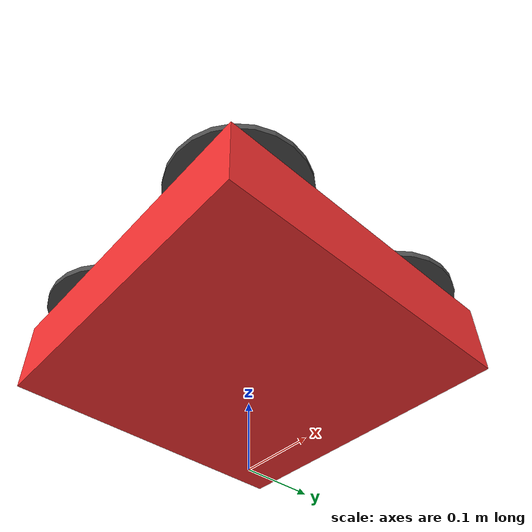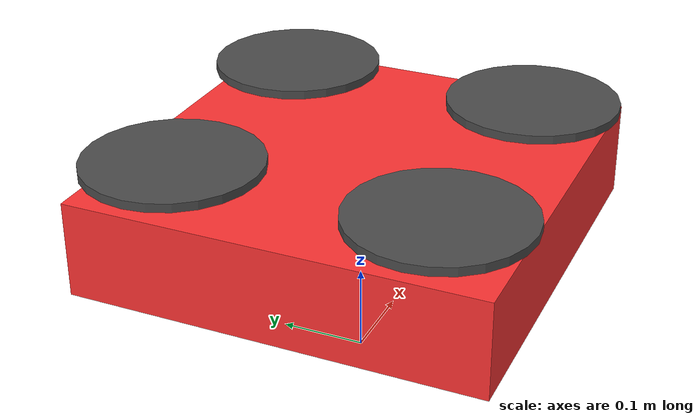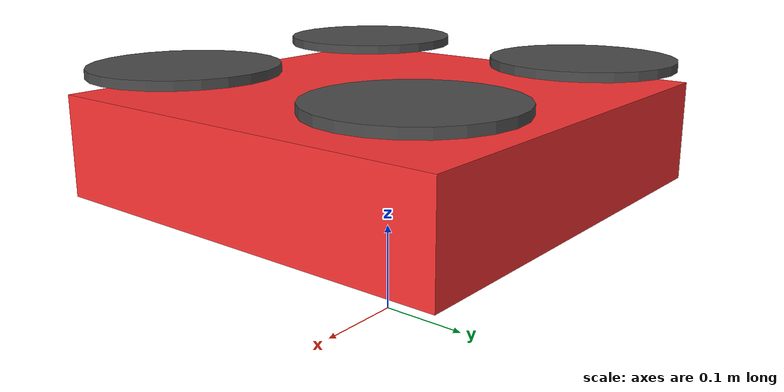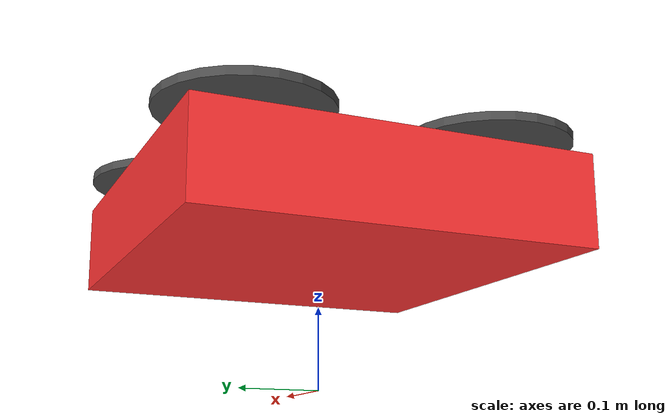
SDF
<?xml version="1.0" ?>
<sdf version="1.9">
  <model name="Cube">

    <pose>0 0 0.2 0 0 0</pose>

    <link name="base_link">
      <inertial>
        <pose>0 0 0 0 0 0</pose>
        <mass>1.5</mass>
        <inertia>
          <ixx>0.029125</ixx>
          <ixy>0.0</ixy>
          <ixz>0.0</ixz>
          <iyy>0.029125</iyy>
          <iyz>0.0</iyz>
          <izz>0.055225</izz>
        </inertia>
      </inertial>

      <visual name="visual">
        <geometry>
          <box>
            <size>0.47 0.47 0.11</size>
          </box>
        </geometry>
        <material>
          <ambient>1 0 0 1</ambient>
          <diffuse>1 0.2 0.2 1</diffuse>
          <specular>0.8 0.8 0.8 1</specular>
        </material>
      </visual>

      <collision name="collision">
        <geometry>
          <box>
            <size>0.47 0.47 0.11</size>
          </box>
        </geometry>
      </collision>

      <!-- Propeller visuals -->
      <visual name="prop_front_left">
        <pose>0.15 0.15 0.08 0 0 0</pose>
        <geometry>
          <cylinder>
            <radius>0.1</radius>
            <length>0.01</length>
          </cylinder>
        </geometry>
        <material>
          <ambient>0.2 0.2 0.2 1</ambient>
          <diffuse>0.3 0.3 0.3 1</diffuse>
        </material>
      </visual>

      <visual name="prop_front_right">
        <pose>0.15 -0.15 0.08 0 0 0</pose>
        <geometry>
          <cylinder>
            <radius>0.1</radius>
            <length>0.01</length>
          </cylinder>
        </geometry>
        <material>
          <ambient>0.2 0.2 0.2 1</ambient>
          <diffuse>0.3 0.3 0.3 1</diffuse>
        </material>
      </visual>

      <visual name="prop_back_left">
        <pose>-0.15 0.15 0.08 0 0 0</pose>
        <geometry>
          <cylinder>
            <radius>0.1</radius>
            <length>0.01</length>
          </cylinder>
        </geometry>
        <material>
          <ambient>0.2 0.2 0.2 1</ambient>
          <diffuse>0.3 0.3 0.3 1</diffuse>
        </material>
      </visual>

      <visual name="prop_back_right">
        <pose>-0.15 -0.15 0.08 0 0 0</pose>
        <geometry>
          <cylinder>
            <radius>0.1</radius>
            <length>0.01</length>
          </cylinder>
        </geometry>
        <material>
          <ambient>0.2 0.2 0.2 1</ambient>
          <diffuse>0.3 0.3 0.3 1</diffuse>
        </material>
      </visual>
    </link>

    <!-- IMU Link - Separate from base_link (following iris pattern) -->
    <link name="imu_link">
      <inertial>
        <pose>0 0 0 0 0 0</pose>
        <mass>0.15</mass>
        <inertia>
          <ixx>0.00001</ixx>
          <ixy>0</ixy>
          <ixz>0</ixz>
          <iyy>0.00002</iyy>
          <iyz>0</iyz>
          <izz>0.00002</izz>
        </inertia>
      </inertial>
      <sensor name="imu_sensor" type="imu">
        <pose degrees="true">0 0 0 180 0 0</pose>
        <always_on>true</always_on>
        <update_rate>250.0</update_rate>
        <visualize>true</visualize>
        <topic>imu</topic>
        <enable_metrics>false</enable_metrics>
      </sensor>
    </link>

    <!-- Joint to attach IMU to base_link -->
    <joint name="imu_joint" type="revolute">
      <child>imu_link</child>
      <parent>base_link</parent>
      <axis>
        <xyz>0 0 1</xyz>
        <limit>
          <lower>0</lower>
          <upper>0</upper>
          <effort>0</effort>
          <velocity>0</velocity>
        </limit>
        <dynamics>
          <damping>1.0</damping>
        </dynamics>
      </axis>
    </joint>

    <!-- Rotor links and joints -->
    <link name="rotor_0">
      <pose>0.15 0.15 0.08 0 0 0</pose>
      <inertial>
        <pose>0 0 0 0 0 0</pose>
        <mass>0.005</mass>
        <inertia>
          <ixx>9.75e-07</ixx>
          <ixy>0.0</ixy>
          <ixz>0.0</ixz>
          <iyy>0.000166704</iyy>
          <iyz>0.0</iyz>
          <izz>0.000167604</izz>
        </inertia>
      </inertial>
    </link>

    <joint name="rotor_0_joint" type="revolute">
      <parent>base_link</parent>
      <child>rotor_0</child>
      <axis>
        <xyz>0 0 1</xyz>
        <limit>
          <lower>-1e+16</lower>
          <upper>1e+16</upper>
        </limit>
        <dynamics>
          <damping>0.001</damping>
        </dynamics>
      </axis>
    </joint>

    <link name="rotor_1">
      <pose>0.15 -0.15 0.08 0 0 0</pose>
      <inertial>
        <pose>0 0 0 0 0 0</pose>
        <mass>0.005</mass>
        <inertia>
          <ixx>9.75e-07</ixx>
          <ixy>0.0</ixy>
          <ixz>0.0</ixz>
          <iyy>0.000166704</iyy>
          <iyz>0.0</iyz>
          <izz>0.000167604</izz>
        </inertia>
      </inertial>
    </link>

    <joint name="rotor_1_joint" type="revolute">
      <parent>base_link</parent>
      <child>rotor_1</child>
      <axis>
        <xyz>0 0 1</xyz>
        <limit>
          <lower>-1e+16</lower>
          <upper>1e+16</upper>
        </limit>
        <dynamics>
          <damping>0.001</damping>
        </dynamics>
      </axis>
    </joint>

    <link name="rotor_2">
      <pose>-0.15 0.15 0.08 0 0 0</pose>
      <inertial>
        <pose>0 0 0 0 0 0</pose>
        <mass>0.005</mass>
        <inertia>
          <ixx>9.75e-07</ixx>
          <ixy>0.0</ixy>
          <ixz>0.0</ixz>
          <iyy>0.000166704</iyy>
          <iyz>0.0</iyz>
          <izz>0.000167604</izz>
        </inertia>
      </inertial>
    </link>

    <joint name="rotor_2_joint" type="revolute">
      <parent>base_link</parent>
      <child>rotor_2</child>
      <axis>
        <xyz>0 0 1</xyz>
        <limit>
          <lower>-1e+16</lower>
          <upper>1e+16</upper>
        </limit>
        <dynamics>
          <damping>0.001</damping>
        </dynamics>
      </axis>
    </joint>

    <link name="rotor_3">
      <pose>-0.15 -0.15 0.08 0 0 0</pose>
      <inertial>
        <pose>0 0 0 0 0 0</pose>
        <mass>0.005</mass>
        <inertia>
          <ixx>9.75e-07</ixx>
          <ixy>0.0</ixy>
          <ixz>0.0</ixz>
          <iyy>0.000166704</iyy>
          <iyz>0.0</iyz>
          <izz>0.000167604</izz>
        </inertia>
      </inertial>
    </link>

    <joint name="rotor_3_joint" type="revolute">
      <parent>base_link</parent>
      <child>rotor_3</child>
      <axis>
        <xyz>0 0 1</xyz>
        <limit>
          <lower>-1e+16</lower>
          <upper>1e+16</upper>
        </limit>
        <dynamics>
          <damping>0.001</damping>
        </dynamics>
      </axis>
    </joint>

    <!-- Lift-Drag plugins for rotor aerodynamics -->
    <!-- Rotor 0 - Front Left -->
    <plugin filename="gz-sim-lift-drag-system"
        name="gz::sim::systems::LiftDrag">
      <a0>0.3</a0>
      <alpha_stall>1.4</alpha_stall>
      <cla>4.2500</cla>
      <cda>0.10</cda>
      <cma>0.0</cma>
      <cla_stall>-0.025</cla_stall>
      <cda_stall>0.0</cda_stall>
      <cma_stall>0.0</cma_stall>
      <area>0.002</area>
      <air_density>1.2041</air_density>
      <cp>0.084 0 0</cp>
      <forward>0 1 0</forward>
      <upward>0 0 1</upward>
      <link_name>rotor_0</link_name>
    </plugin>
    <plugin filename="gz-sim-lift-drag-system"
        name="gz::sim::systems::LiftDrag">
      <a0>0.3</a0>
      <alpha_stall>1.4</alpha_stall>
      <cla>4.2500</cla>
      <cda>0.10</cda>
      <cma>0.0</cma>
      <cla_stall>-0.025</cla_stall>
      <cda_stall>0.0</cda_stall>
      <cma_stall>0.0</cma_stall>
      <area>0.002</area>
      <air_density>1.2041</air_density>
      <cp>-0.084 0 0</cp>
      <forward>0 -1 0</forward>
      <upward>0 0 1</upward>
      <link_name>rotor_0</link_name>
    </plugin>

    <!-- Rotor 1 - Front Right -->
    <plugin filename="gz-sim-lift-drag-system"
        name="gz::sim::systems::LiftDrag">
      <a0>0.3</a0>
      <alpha_stall>1.4</alpha_stall>
      <cla>4.2500</cla>
      <cda>0.10</cda>
      <cma>0.0</cma>
      <cla_stall>-0.025</cla_stall>
      <cda_stall>0.0</cda_stall>
      <cma_stall>0.0</cma_stall>
      <area>0.002</area>
      <air_density>1.2041</air_density>
      <cp>0.084 0 0</cp>
      <forward>0 1 0</forward>
      <upward>0 0 1</upward>
      <link_name>rotor_1</link_name>
    </plugin>
    <plugin filename="gz-sim-lift-drag-system"
        name="gz::sim::systems::LiftDrag">
      <a0>0.3</a0>
      <alpha_stall>1.4</alpha_stall>
      <cla>4.2500</cla>
      <cda>0.10</cda>
      <cma>0.0</cma>
      <cla_stall>-0.025</cla_stall>
      <cda_stall>0.0</cda_stall>
      <cma_stall>0.0</cma_stall>
      <area>0.002</area>
      <air_density>1.2041</air_density>
      <cp>-0.084 0 0</cp>
      <forward>0 -1 0</forward>
      <upward>0 0 1</upward>
      <link_name>rotor_1</link_name>
    </plugin>

    <!-- Rotor 2 - Back Left -->
    <plugin filename="gz-sim-lift-drag-system"
        name="gz::sim::systems::LiftDrag">
      <a0>0.3</a0>
      <alpha_stall>1.4</alpha_stall>
      <cla>4.2500</cla>
      <cda>0.10</cda>
      <cma>0.0</cma>
      <cla_stall>-0.025</cla_stall>
      <cda_stall>0.0</cda_stall>
      <cma_stall>0.0</cma_stall>
      <area>0.002</area>
      <air_density>1.2041</air_density>
      <cp>0.084 0 0</cp>
      <forward>0 -1 0</forward>
      <upward>0 0 1</upward>
      <link_name>rotor_2</link_name>
    </plugin>
    <plugin filename="gz-sim-lift-drag-system"
        name="gz::sim::systems::LiftDrag">
      <a0>0.3</a0>
      <alpha_stall>1.4</alpha_stall>
      <cla>4.2500</cla>
      <cda>0.10</cda>
      <cma>0.0</cma>
      <cla_stall>-0.025</cla_stall>
      <cda_stall>0.0</cda_stall>
      <cma_stall>0.0</cma_stall>
      <area>0.002</area>
      <air_density>1.2041</air_density>
      <cp>-0.084 0 0</cp>
      <forward>0 1 0</forward>
      <upward>0 0 1</upward>
      <link_name>rotor_2</link_name>
    </plugin>

    <!-- Rotor 3 - Back Right -->
    <plugin filename="gz-sim-lift-drag-system"
        name="gz::sim::systems::LiftDrag">
      <a0>0.3</a0>
      <alpha_stall>1.4</alpha_stall>
      <cla>4.2500</cla>
      <cda>0.10</cda>
      <cma>0.0</cma>
      <cla_stall>-0.025</cla_stall>
      <cda_stall>0.0</cda_stall>
      <cma_stall>0.0</cma_stall>
      <area>0.002</area>
      <air_density>1.2041</air_density>
      <cp>0.084 0 0</cp>
      <forward>0 -1 0</forward>
      <upward>0 0 1</upward>
      <link_name>rotor_3</link_name>
    </plugin>
    <plugin filename="gz-sim-lift-drag-system"
        name="gz::sim::systems::LiftDrag">
      <a0>0.3</a0>
      <alpha_stall>1.4</alpha_stall>
      <cla>4.2500</cla>
      <cda>0.10</cda>
      <cma>0.0</cma>
      <cla_stall>-0.025</cla_stall>
      <cda_stall>0.0</cda_stall>
      <cma_stall>0.0</cma_stall>
      <area>0.002</area>
      <air_density>1.2041</air_density>
      <cp>-0.084 0 0</cp>
      <forward>0 1 0</forward>
      <upward>0 0 1</upward>
      <link_name>rotor_3</link_name>
    </plugin>

    <!-- Apply Joint Force System - Required for motor control -->
    <plugin filename="gz-sim-apply-joint-force-system"
      name="gz::sim::systems::ApplyJointForce">
      <joint_name>rotor_0_joint</joint_name>
    </plugin>
    <plugin filename="gz-sim-apply-joint-force-system"
      name="gz::sim::systems::ApplyJointForce">
      <joint_name>rotor_1_joint</joint_name>
    </plugin>
    <plugin filename="gz-sim-apply-joint-force-system"
      name="gz::sim::systems::ApplyJointForce">
      <joint_name>rotor_2_joint</joint_name>
    </plugin>
    <plugin filename="gz-sim-apply-joint-force-system"
      name="gz::sim::systems::ApplyJointForce">
      <joint_name>rotor_3_joint</joint_name>
    </plugin>

    <!-- Joint State Publisher -->
    <plugin filename="gz-sim-joint-state-publisher-system"
      name="gz::sim::systems::JointStatePublisher">
    </plugin>

    <!-- IMU System Plugin -->
    <plugin filename="gz-sim-imu-system"
      name="gz::sim::systems::Imu">
    </plugin>

    <!-- ArduPilot Plugin - MUST BE LAST -->
    <plugin filename="ArduPilotPlugin" name="ArduPilotPlugin">
      <!-- Port settings -->
      <fdm_addr>127.0.0.1</fdm_addr>
      <fdm_port_in>9002</fdm_port_in>
      <fdm_port_out>9003</fdm_port_out>
      <connectionTimeoutMaxCount>5</connectionTimeoutMaxCount>
      <lock_step>1</lock_step>

      <!-- Frame conventions -->
      <modelXYZToAirplaneXForwardZDown degrees="true">0 0 0 180 0 0</modelXYZToAirplaneXForwardZDown>
      <gazeboXYZToNED degrees="true">0 0 0 180 0 90</gazeboXYZToNED>

      <!-- IMU Sensor - CORRECTED: Now references imu_link -->
      <imuName>Cube::imu_link::imu_sensor</imuName>

      <!-- Motor 0: Front Left (CCW) -->
      <control channel="0">
        <jointName>rotor_0_joint</jointName>
        <useForce>1</useForce>
        <multiplier>838</multiplier>
        <offset>0</offset>
        <servo_min>1100</servo_min>
        <servo_max>1900</servo_max>
        <type>VELOCITY</type>
        <p_gain>0.20</p_gain>
        <i_gain>0</i_gain>
        <d_gain>0</d_gain>
        <i_max>0</i_max>
        <i_min>0</i_min>
        <cmd_max>2.5</cmd_max>
        <cmd_min>-2.5</cmd_min>
        <controlVelocitySlowdownSim>1</controlVelocitySlowdownSim>
      </control>

      <!-- Motor 1: Front Right (CW) -->
      <control channel="1">
        <jointName>rotor_1_joint</jointName>
        <useForce>1</useForce>
        <multiplier>-838</multiplier>
        <offset>0</offset>
        <servo_min>1100</servo_min>
        <servo_max>1900</servo_max>
        <type>VELOCITY</type>
        <p_gain>0.20</p_gain>
        <i_gain>0</i_gain>
        <d_gain>0</d_gain>
        <i_max>0</i_max>
        <i_min>0</i_min>
        <cmd_max>2.5</cmd_max>
        <cmd_min>-2.5</cmd_min>
        <controlVelocitySlowdownSim>1</controlVelocitySlowdownSim>
      </control>

      <!-- Motor 2: Back Left (CW) -->
      <control channel="2">
        <jointName>rotor_2_joint</jointName>
        <useForce>1</useForce>
        <multiplier>-838</multiplier>
        <offset>0</offset>
        <servo_min>1100</servo_min>
        <servo_max>1900</servo_max>
        <type>VELOCITY</type>
        <p_gain>0.20</p_gain>
        <i_gain>0</i_gain>
        <d_gain>0</d_gain>
        <i_max>0</i_max>
        <i_min>0</i_min>
        <cmd_max>2.5</cmd_max>
        <cmd_min>-2.5</cmd_min>
        <controlVelocitySlowdownSim>1</controlVelocitySlowdownSim>
      </control>

      <!-- Motor 3: Back Right (CCW) -->
      <control channel="3">
        <jointName>rotor_3_joint</jointName>
        <useForce>1</useForce>
        <multiplier>838</multiplier>
        <offset>0</offset>
        <servo_min>1100</servo_min>
        <servo_max>1900</servo_max>
        <type>VELOCITY</type>
        <p_gain>0.20</p_gain>
        <i_gain>0</i_gain>
        <d_gain>0</d_gain>
        <i_max>0</i_max>
        <i_min>0</i_min>
        <cmd_max>2.5</cmd_max>
        <cmd_min>-2.5</cmd_min>
        <controlVelocitySlowdownSim>1</controlVelocitySlowdownSim>
      </control>
    </plugin>

  </model>
</sdf>
